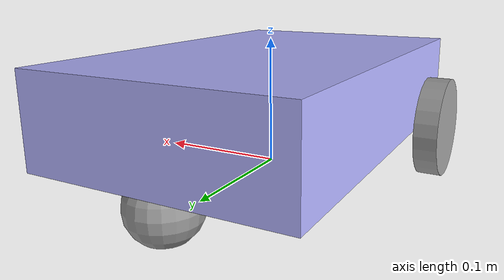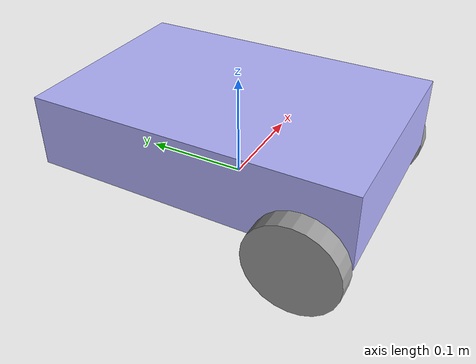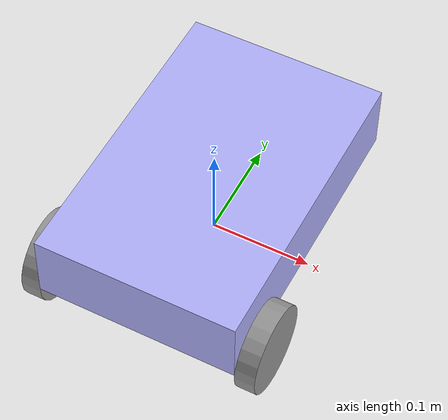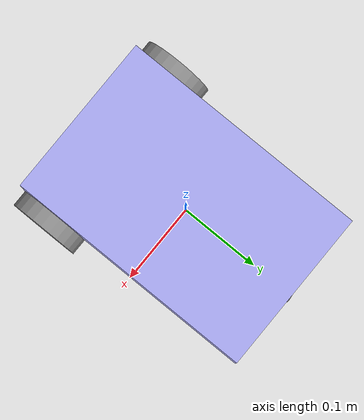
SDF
<?xml version='1.0'?>
<sdf version='1.6'>
  <model name='pseudoAsimov'>
    <link name='link_0'>
      <inertial>
        <mass>1</mass>
        <inertia>
          <ixx>0.166667</ixx>
          <ixy>0</ixy>
          <ixz>0</ixz>
          <iyy>0.166667</iyy>
          <iyz>0</iyz>
          <izz>0.166667</izz>
        </inertia>
        <pose frame=''>0 0 0 0 -0 0</pose>
      </inertial>
      <pose frame=''>0 0 0.05565 -0 -0 -0</pose>
      <gravity>1</gravity>
      <self_collide>0</self_collide>
      <kinematic>0</kinematic>
      <enable_wind>0</enable_wind>
      <visual name='visual'>
        <pose frame=''>0 0 0 0 -0 0</pose>
        <geometry>
          <box>
            <size>0.2 0.306 0.07</size>
          </box>
        </geometry>
        <material>
          <lighting>1</lighting>
          <script>
            <uri>file://media/materials/scripts/gazebo.material</uri>
            <name>Gazebo/Grey</name>
          </script>
          <shader type='vertex'>
            <normal_map>__default__</normal_map>
          </shader>
          <ambient>0.3 0.3 1 1</ambient>
          <diffuse>0.7 0.7 1 1</diffuse>
          <specular>0.01 0.01 1 1</specular>
          <emissive>0 0 0 1</emissive>
        </material>
        <transparency>0</transparency>
        <cast_shadows>1</cast_shadows>
      </visual>
      <collision name='collision'>
        <laser_retro>0</laser_retro>
        <max_contacts>10</max_contacts>
        <pose frame=''>0 0 0 0 -0 0</pose>
        <geometry>
          <box>
            <size>0.2 0.306 0.07</size>
          </box>
        </geometry>
        <surface>
          <friction>
            <ode>
              <mu>1</mu>
              <mu2>1</mu2>
              <fdir1>0 0 0</fdir1>
              <slip1>0</slip1>
              <slip2>0</slip2>
            </ode>
            <torsional>
              <coefficient>1</coefficient>
              <patch_radius>0</patch_radius>
              <surface_radius>0</surface_radius>
              <use_patch_radius>1</use_patch_radius>
              <ode>
                <slip>0</slip>
              </ode>
            </torsional>
          </friction>
          <bounce>
            <restitution_coefficient>0</restitution_coefficient>
            <threshold>1e+06</threshold>
          </bounce>
          <contact>
            <collide_without_contact>0</collide_without_contact>
            <collide_without_contact_bitmask>1</collide_without_contact_bitmask>
            <collide_bitmask>1</collide_bitmask>
            <ode>
              <soft_cfm>0</soft_cfm>
              <soft_erp>0.2</soft_erp>
              <kp>1e+13</kp>
              <kd>1</kd>
              <max_vel>0.01</max_vel>
              <min_depth>0</min_depth>
            </ode>
            <bullet>
              <split_impulse>1</split_impulse>
              <split_impulse_penetration_threshold>-0.01</split_impulse_penetration_threshold>
              <soft_cfm>0</soft_cfm>
              <soft_erp>0.2</soft_erp>
              <kp>1e+13</kp>
              <kd>1</kd>
            </bullet>
          </contact>
        </surface>
      </collision>
    </link>
    <link name='link_0_0_clone'>
      <inertial>
        <mass>1</mass>
        <inertia>
          <ixx>0.145833</ixx>
          <ixy>0</ixy>
          <ixz>0</ixz>
          <iyy>0.145833</iyy>
          <iyz>0</iyz>
          <izz>0.125</izz>
        </inertia>
        <pose frame=''>0 0 0 0 -0 0</pose>
      </inertial>
      <pose frame=''>0.110004 -0.10935 0.016023 -2.8e-05 -1.5707 2.8e-05</pose>
      <gravity>1</gravity>
      <self_collide>0</self_collide>
      <kinematic>0</kinematic>
      <enable_wind>0</enable_wind>
      <visual name='visual_0'>
        <pose frame=''>0 0 0 0 -0 0</pose>
        <geometry>
          <cylinder>
            <radius>0.04365</radius>
            <length>0.02</length>
          </cylinder>
        </geometry>
        <material>
          <lighting>1</lighting>
          <script>
            <uri>file://media/materials/scripts/gazebo.material</uri>
            <name>Gazebo/Grey</name>
          </script>
          <shader type='vertex'>
            <normal_map>__default__</normal_map>
          </shader>
          <ambient>0 0 0 1</ambient>
          <diffuse>0.7 0.7 0.7 1</diffuse>
          <specular>0.01 0.01 0.01 1</specular>
          <emissive>0 0 0 1</emissive>
        </material>
        <transparency>0</transparency>
        <cast_shadows>1</cast_shadows>
      </visual>
      <collision name='collision'>
        <laser_retro>0</laser_retro>
        <max_contacts>10</max_contacts>
        <pose frame=''>0 0 0 0 -0 0</pose>
        <geometry>
          <cylinder>
            <radius>0.04365</radius>
            <length>0.02</length>
          </cylinder>
        </geometry>
        <surface>
          <friction>
            <ode>
              <mu>1</mu>
              <mu2>1</mu2>
              <fdir1>0 0 0</fdir1>
              <slip1>0</slip1>
              <slip2>0</slip2>
            </ode>
            <torsional>
              <coefficient>1</coefficient>
              <patch_radius>0</patch_radius>
              <surface_radius>0</surface_radius>
              <use_patch_radius>1</use_patch_radius>
              <ode>
                <slip>0</slip>
              </ode>
            </torsional>
          </friction>
          <bounce>
            <restitution_coefficient>0</restitution_coefficient>
            <threshold>1e+06</threshold>
          </bounce>
          <contact>
            <collide_without_contact>0</collide_without_contact>
            <collide_without_contact_bitmask>1</collide_without_contact_bitmask>
            <collide_bitmask>1</collide_bitmask>
            <ode>
              <soft_cfm>0</soft_cfm>
              <soft_erp>0.2</soft_erp>
              <kp>1e+13</kp>
              <kd>1</kd>
              <max_vel>0.01</max_vel>
              <min_depth>0</min_depth>
            </ode>
            <bullet>
              <split_impulse>1</split_impulse>
              <split_impulse_penetration_threshold>-0.01</split_impulse_penetration_threshold>
              <soft_cfm>0</soft_cfm>
              <soft_erp>0.2</soft_erp>
              <kp>1e+13</kp>
              <kd>1</kd>
            </bullet>
          </contact>
        </surface>
      </collision>
    </link>
    <link name='link_0_0_clone_clone'>
      <inertial>
        <mass>1</mass>
        <inertia>
          <ixx>0.145833</ixx>
          <ixy>0</ixy>
          <ixz>0</ixz>
          <iyy>0.145833</iyy>
          <iyz>0</iyz>
          <izz>0.125</izz>
        </inertia>
        <pose frame=''>0 0 0 0 -0 0</pose>
      </inertial>
      <pose frame=''>-0.110004 -0.10935 0.016023 -2.8e-05 -1.5707 2.8e-05</pose>
      <gravity>1</gravity>
      <self_collide>0</self_collide>
      <kinematic>0</kinematic>
      <enable_wind>0</enable_wind>
      <visual name='visual_0'>
        <pose frame=''>0 0 0 0 -0 0</pose>
        <geometry>
          <cylinder>
            <radius>0.04365</radius>
            <length>0.02</length>
          </cylinder>
        </geometry>
        <material>
          <lighting>1</lighting>
          <script>
            <uri>file://media/materials/scripts/gazebo.material</uri>
            <name>Gazebo/Grey</name>
          </script>
          <shader type='vertex'>
            <normal_map>__default__</normal_map>
          </shader>
          <ambient>0 0 0 1</ambient>
          <diffuse>0.7 0.7 0.7 1</diffuse>
          <specular>0.01 0.01 0.01 1</specular>
          <emissive>0 0 0 1</emissive>
        </material>
        <transparency>0</transparency>
        <cast_shadows>1</cast_shadows>
      </visual>
      <collision name='collision'>
        <laser_retro>0</laser_retro>
        <max_contacts>10</max_contacts>
        <pose frame=''>0 0 0 0 -0 0</pose>
        <geometry>
          <cylinder>
            <radius>0.04365</radius>
            <length>0.02</length>
          </cylinder>
        </geometry>
        <surface>
          <friction>
            <ode>
              <mu>1</mu>
              <mu2>1</mu2>
              <fdir1>0 0 0</fdir1>
              <slip1>0</slip1>
              <slip2>0</slip2>
            </ode>
            <torsional>
              <coefficient>1</coefficient>
              <patch_radius>0</patch_radius>
              <surface_radius>0</surface_radius>
              <use_patch_radius>1</use_patch_radius>
              <ode>
                <slip>0</slip>
              </ode>
            </torsional>
          </friction>
          <bounce>
            <restitution_coefficient>0</restitution_coefficient>
            <threshold>1e+06</threshold>
          </bounce>
          <contact>
            <collide_without_contact>0</collide_without_contact>
            <collide_without_contact_bitmask>1</collide_without_contact_bitmask>
            <collide_bitmask>1</collide_bitmask>
            <ode>
              <soft_cfm>0</soft_cfm>
              <soft_erp>0.2</soft_erp>
              <kp>1e+13</kp>
              <kd>1</kd>
              <max_vel>0.01</max_vel>
              <min_depth>0</min_depth>
            </ode>
            <bullet>
              <split_impulse>1</split_impulse>
              <split_impulse_penetration_threshold>-0.01</split_impulse_penetration_threshold>
              <soft_cfm>0</soft_cfm>
              <soft_erp>0.2</soft_erp>
              <kp>1e+13</kp>
              <kd>1</kd>
            </bullet>
          </contact>
        </surface>
      </collision>
    </link>
    <link name='link_2'>
      <inertial>
        <mass>1</mass>
        <inertia>
          <ixx>0.1</ixx>
          <ixy>0</ixy>
          <ixz>0</ixz>
          <iyy>0.1</iyy>
          <iyz>0</iyz>
          <izz>0.1</izz>
        </inertia>
        <pose frame=''>0 0 0 0 -0 0</pose>
      </inertial>
      <pose frame=''>0.005527 0.128926 0.007614 -0 -0 -0</pose>
      <gravity>1</gravity>
      <self_collide>0</self_collide>
      <kinematic>0</kinematic>
      <enable_wind>0</enable_wind>
      <visual name='visual'>
        <pose frame=''>0 0 0 0 -0 0</pose>
        <geometry>
          <sphere>
            <radius>0.02682</radius>
          </sphere>
        </geometry>
        <material>
          <lighting>1</lighting>
          <script>
            <uri>file://media/materials/scripts/gazebo.material</uri>
            <name>Gazebo/Grey</name>
          </script>
          <shader type='vertex'>
            <normal_map>__default__</normal_map>
          </shader>
          <ambient>0.3 0.3 0.3 1</ambient>
          <diffuse>0.7 0.7 0.7 1</diffuse>
          <specular>0.01 0.01 0.01 1</specular>
          <emissive>0 0 0 1</emissive>
        </material>
        <transparency>0</transparency>
        <cast_shadows>1</cast_shadows>
      </visual>
      <collision name='collision'>
        <laser_retro>0</laser_retro>
        <max_contacts>10</max_contacts>
        <pose frame=''>0 0 0 0 -0 0</pose>
        <geometry>
          <sphere>
            <radius>0.02682</radius>
          </sphere>
        </geometry>
        <surface>
          <friction>
            <ode>
              <mu>1</mu>
              <mu2>1</mu2>
              <fdir1>0 0 0</fdir1>
              <slip1>0</slip1>
              <slip2>0</slip2>
            </ode>
            <torsional>
              <coefficient>1</coefficient>
              <patch_radius>0</patch_radius>
              <surface_radius>0</surface_radius>
              <use_patch_radius>1</use_patch_radius>
              <ode>
                <slip>0</slip>
              </ode>
            </torsional>
          </friction>
          <bounce>
            <restitution_coefficient>0</restitution_coefficient>
            <threshold>1e+06</threshold>
          </bounce>
          <contact>
            <collide_without_contact>0</collide_without_contact>
            <collide_without_contact_bitmask>1</collide_without_contact_bitmask>
            <collide_bitmask>1</collide_bitmask>
            <ode>
              <soft_cfm>0</soft_cfm>
              <soft_erp>0.2</soft_erp>
              <kp>1e+13</kp>
              <kd>1</kd>
              <max_vel>0.01</max_vel>
              <min_depth>0</min_depth>
            </ode>
            <bullet>
              <split_impulse>1</split_impulse>
              <split_impulse_penetration_threshold>-0.01</split_impulse_penetration_threshold>
              <soft_cfm>0</soft_cfm>
              <soft_erp>0.2</soft_erp>
              <kp>1e+13</kp>
              <kd>1</kd>
            </bullet>
          </contact>
        </surface>
      </collision>
    </link>
    <joint name='link_0_JOINT_4' type='revolute'>
      <parent>link_0</parent>
      <child>link_0_0_clone_clone</child>
      <pose frame=''>0 0 0 0 -0 0</pose>
      <axis>
        <xyz>-0 -0 -1</xyz>
        <use_parent_model_frame>0</use_parent_model_frame>
        <limit>
          <lower>-1.79769e+308</lower>
          <upper>1.79769e+308</upper>
          <effort>-1</effort>
          <velocity>-1</velocity>
        </limit>
        <dynamics>
          <spring_reference>0</spring_reference>
          <spring_stiffness>0</spring_stiffness>
          <damping>0</damping>
          <friction>0</friction>
        </dynamics>
      </axis>
      <physics>
        <ode>
          <limit>
            <cfm>0</cfm>
            <erp>0.2</erp>
          </limit>
          <suspension>
            <cfm>0</cfm>
            <erp>0.2</erp>
          </suspension>
        </ode>
      </physics>
    </joint>
    <joint name='link_0_JOINT_5' type='revolute'>
      <parent>link_0</parent>
      <child>link_0_0_clone</child>
      <pose frame=''>0 0 0 0 -0 0</pose>
      <axis>
        <xyz>0 0 1</xyz>
        <use_parent_model_frame>0</use_parent_model_frame>
        <limit>
          <lower>-1.79769e+308</lower>
          <upper>1.79769e+308</upper>
          <effort>-1</effort>
          <velocity>-1</velocity>
        </limit>
        <dynamics>
          <spring_reference>0</spring_reference>
          <spring_stiffness>0</spring_stiffness>
          <damping>0</damping>
          <friction>0</friction>
        </dynamics>
      </axis>
      <physics>
        <ode>
          <limit>
            <cfm>0</cfm>
            <erp>0.2</erp>
          </limit>
          <suspension>
            <cfm>0</cfm>
            <erp>0.2</erp>
          </suspension>
        </ode>
      </physics>
    </joint>
    <joint name='link_0_JOINT_6' type='ball'>
      <parent>link_0</parent>
      <child>link_2</child>
      <pose frame=''>0 0 0 0 -0 0</pose>
      <physics>
        <ode>
          <limit>
            <cfm>0</cfm>
            <erp>0.2</erp>
          </limit>
          <suspension>
            <cfm>0</cfm>
            <erp>0.2</erp>
          </suspension>
        </ode>
      </physics>
    </joint>
    <static>0</static>
    <allow_auto_disable>1</allow_auto_disable>
  </model>
</sdf>
